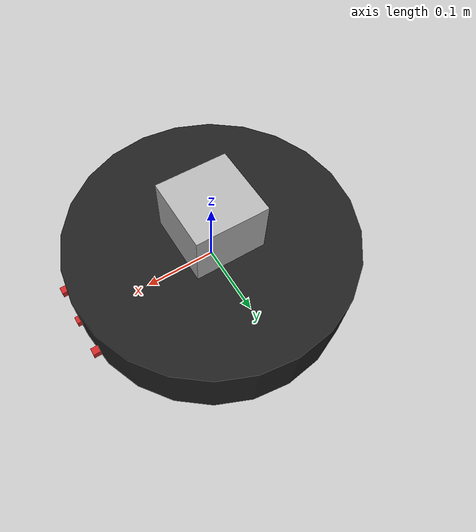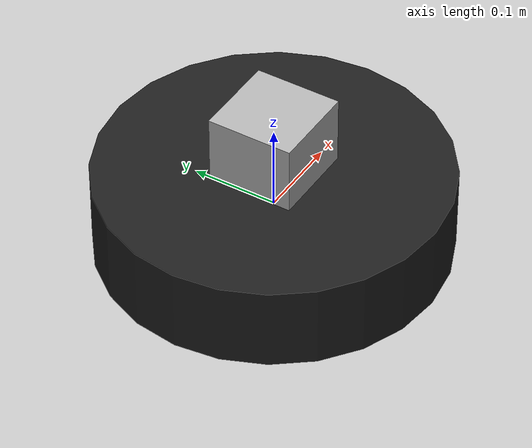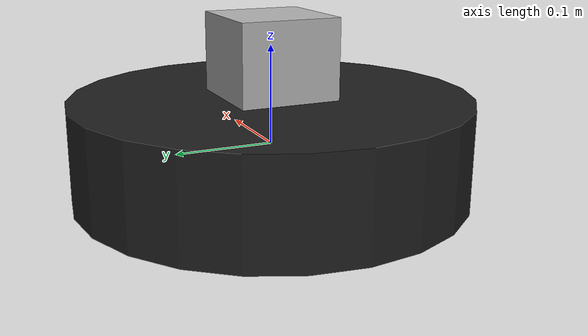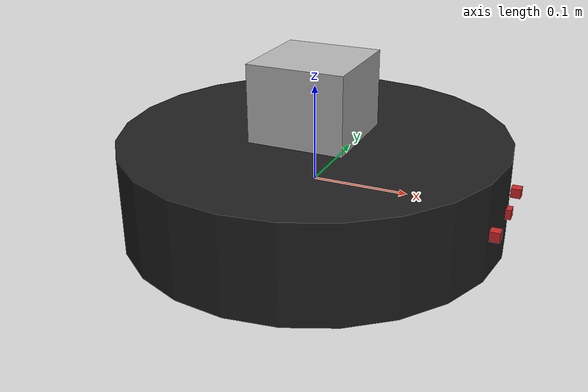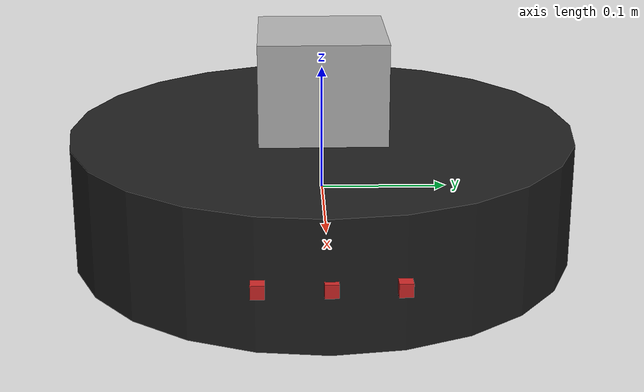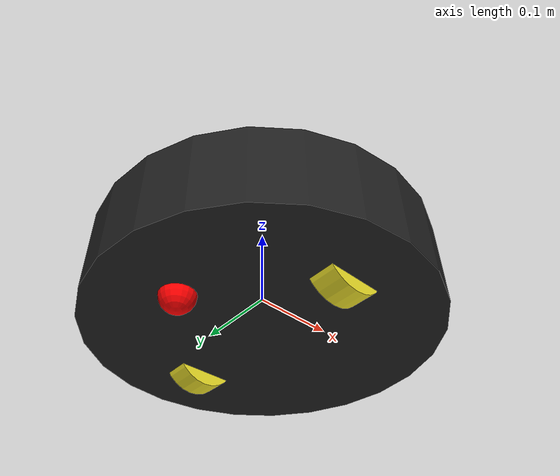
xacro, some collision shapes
<?xml version='1.0'?>

<robot name="base" xmlns:xacro="http://www.ros.org/wiki/xacro">

<xacro:property name="camera_link" value="0.01"/>
<xacro:property name="camera_mass" value="0.1"/>

<xacro:include filename="$(find dualwheelbot)/urdf/materials.xacro"/>
<xacro:include filename="$(find dualwheelbot)/urdf/bot.gazebo"/>

  <link name='chassis'>
    <pose>0 0 0 0 0 0</pose>

    <inertial>
      <mass value="2"/>
      <origin xyz="0.0 0 0.0" rpy=" 0 0 0"/>
      <inertia ixx="0.00416" ixy="0" ixz="0" iyy="0.01416" iyz="0" izz="0.0166"/>
    </inertial>

    <collision name='collision'>
      <geometry>
        <cylinder length="0.1" radius="0.4"/>
      </geometry>
    </collision>

    <visual name='chassis_visual'>
      <origin xyz="0 0 0" rpy=" 0 0 0"/>
      <geometry>
        <cylinder length="0.1" radius="0.2"/>
      </geometry>
      <material name="black"/>
    </visual>

  </link>

  <link name="custer_wheel">
    <inertial>
      <origin xyz="0.0 0.0 0.0" rpy="0.0 0.0 0.0"/>
      <mass value="0.1"/>
      <inertia ixx="0.002" ixy="0.0" ixz="0.0" iyy="0.002" iyz="0.0" izz="0.002"/>
    </inertial>

    <visual name="">
      <origin xyz="0.0 0.0 0.0" rpy="0.0 0.0 0.0"/>
      <geometry>
         <sphere radius="0.02"/>
      </geometry>

      <material name="">
        <color rgba="1.0 0.0 0.0 1.0"/>
        <texture filename=""/>
      </material>
    </visual>

    <collision>
      <origin xyz="0.0 0.0 0.0" rpy="0.0 0.0 0.0"/>
      <geometry>
         <sphere radius="0.02"/>
      </geometry>
    </collision>
  </link>

  <joint name="custer_joint" type="fixed">
    <origin xyz="-0.112 0.0 -0.05 " rpy="0.0 0.0 0.0"/>
    <parent link="chassis"/>
    <child link="custer_wheel"/>
    <axis xyz="0.0 0.0 0.0"/>
    <limit lower="0.0" upper="0.0" effort="0.0" velocity="0.0"/>
  </joint>

  <link name="left_wheel">
    <!--origin xyz="0.1 0.13 0.1" rpy="0 1.5707 1.5707"/-->
    <collision name="collision">
      <origin xyz="0 0 0" rpy="0 1.5707 1.5707"/>
      <geometry>
        <cylinder radius="0.041" length="0.03"/>
      </geometry>

    </collision>

    <visual name="left_wheel_visual">
      <origin xyz="0 0 0" rpy="0 1.5707 1.5707"/>
      <geometry>
        <cylinder radius="0.041" length="0.03"/>

      </geometry>
      <material name="yellow"/>
    </visual>

    <inertial>
      <origin xyz="0 0 0" rpy="0 1.5707 1.5707"/>
      <mass value="1"/>
      <inertia ixx="0.005" ixy="0" ixz="0" iyy="0.0025" iyz="0" izz="0.0025"/>
    </inertial>

  </link>

  <link name="right_wheel">
    <!--origin xyz="0.1 -0.13 0.1" rpy="0 1.5707 1.5707"/-->
    <collision name="collision">
      <origin xyz="0 0 0" rpy="0 1.5707 1.5707"/>
      <geometry>
        <cylinder radius="0.041" length="0.03"/>
      </geometry>
      <surface>
        <friction>
          <ode>
            <mu>200</mu>
            <mu2>200</mu2>
            <slip1>0</slip1>
            <slip2>0</slip2>
          </ode>
        </friction>
      </surface>
    </collision>
    <visual name="right_wheel_visual">
      <origin xyz="0 0 0" rpy="0 1.5707 1.5707"/>
      <geometry>
       <cylinder radius="0.041" length="0.03"/>

      </geometry>
      <material name="yellow"/>
    </visual>
    <inertial>
      <origin xyz="0 0 0" rpy="0 1.5707 1.5707"/>
      <mass value="1"/>
      <inertia ixx="0.005" ixy="0" ixz="0" iyy="0.0025" iyz="0" izz="0.0025"/>
    </inertial>
  </link>

  <joint type="continuous" name="left_wheel_hinge">
    <origin xyz="0 0.12 -0.025" rpy="0 0 0"/>
    <!--origin xyz="0.1 0.13 0" rpy="0 1.5707 1.5707"/-->
    <child link="left_wheel"/>
    <parent link="chassis"/>
    <axis xyz="0 1 0" rpy="0 0 0"/>
    <joint_properties damping="0.0" friction="0.0"/>
  </joint>

  <joint type="continuous" name="right_wheel_hinge">
    <origin xyz="0 -0.12 -0.025" rpy="0 0 0"/>
    <!--origin xyz="0.1 -0.13 0" rpy="0 1.5707 1.5707"/-->
    <child link="right_wheel"/>
    <parent link="chassis"/>
    <axis xyz="0 1 0" rpy="0 0 0"/>
    <joint_properties damping="0.0" friction="0.0"/>
  </joint>

<gazebo reference="right_wheel">
  <mu1>15</mu1>
  <mu2>15</mu2>
  <kp>1000000.0</kp>
  <kd>100.0</kd>
  <minDepth>0.001</minDepth>
  <maxVel>1.0</maxVel>
</gazebo>

<gazebo reference="left_wheel">
  <mu1>15</mu1>
  <mu2>15</mu2>
  <kp>1000000.0</kp>
  <kd>100.0</kd>
  <minDepth>0.001</minDepth>
  <maxVel>1.0</maxVel>
</gazebo>

<gazebo reference="custer_wheel">
  <mu1>0</mu1>
  <mu2>0</mu2>
  <slip1>1.0</slip1>
  <slip2>1.0</slip2>
</gazebo>

  <!-- Camera -->
  <link name="camera_link_R">
    <collision>
      <origin xyz="0 0 0" rpy="0 0 0"/>
      <geometry>
    <box size="${camera_link} ${camera_link} ${camera_link}"/>
      </geometry>
    </collision>

    <visual>
      <origin xyz="0 0 0" rpy="0 0 0"/>
      <geometry>
    <box size="${camera_link} ${camera_link} ${camera_link}"/>
      </geometry>
      <material name="red"/>
    </visual>

    <inertial>
      <mass value="${camera_mass}" />
      <origin xyz="0 0 0" rpy="0 0 0"/>
      <inertia ixx="1e-6" ixy="0" ixz="0" iyy="1e-6" iyz="0" izz="1e-6" />
    </inertial>
  </link>

  <joint name="camera_joint_R" type="fixed">
    <axis xyz="0 1 0" />
    <origin xyz="0.2 0.05 0" rpy="0 0 0"/>
    <parent link="chassis"/>
    <child link="camera_link_R"/>
  </joint>

  <!-- Camera -->
  <link name="camera_link_L">
    <collision>
      <origin xyz="0 0 0" rpy="0 0 0"/>
      <geometry>
    <box size="${camera_link} ${camera_link} ${camera_link}"/>
      </geometry>
    </collision>

    <visual>
      <origin xyz="0 0 0" rpy="0 0 0"/>
      <geometry>
    <box size="${camera_link} ${camera_link} ${camera_link}"/>
      </geometry>
      <material name="red"/>
    </visual>

    <inertial>
      <mass value="${camera_mass}" />
      <origin xyz="0 0 0" rpy="0 0 0"/>
      <inertia ixx="1e-6" ixy="0" ixz="0" iyy="1e-6" iyz="0" izz="1e-6" />
    </inertial>
  </link>

  <joint name="camera_joint_L" type="fixed">
    <axis xyz="0 1 0" />
    <origin xyz="0.2 -0.05 0" rpy="0 0 0"/>
    <parent link="chassis"/>
    <child link="camera_link_L"/>
  </joint>

  <link name="stereo_camera_frame">
    <collision>
      <origin xyz="0 0 0" rpy="0 0 0"/>
      <geometry>
    <box size="${camera_link} ${camera_link} ${camera_link}"/>
      </geometry>
    </collision>

    <visual>
      <origin xyz="0 0 0" rpy="0 0 0"/>
      <geometry>
    <box size="${camera_link} ${camera_link} ${camera_link}"/>
      </geometry>
      <material name="red"/>
    </visual>

    <inertial>
      <mass value="${camera_mass}" />
      <origin xyz="0 0 0" rpy="0 0 0"/>
      <inertia ixx="1e-6" ixy="0" ixz="0" iyy="1e-6" iyz="0" izz="1e-6" />
    </inertial>
  </link>
  <joint name="stereo_camera_frame_joint" type="fixed">
    <axis xyz="0 1 0" />
    <origin xyz="0.2 0.0 0" rpy="0 0 0"/>
    <parent link="chassis"/>
    <child link="stereo_camera_frame"/>
  </joint>

  <!-- Hokuyo Laser -->
  <link name="lidar_link">
    <collision>
      <origin xyz="0 0 0" rpy="0 0 0"/>
      <geometry>
    <box size="0.1 0.1 0.1"/>
      </geometry>
    </collision>

    <visual>
      <origin xyz="0 0 0" rpy="0 0 0"/>
      <geometry>
        <mesh filename="package://dualwheelbot/meshes/hokuyo.dae"/>
      </geometry>
    </visual>

    <inertial>
      <mass value="1e-5" />
      <origin xyz="0 0 0" rpy="0 0 0"/>
      <inertia ixx="1e-6" ixy="0" ixz="0" iyy="1e-6" iyz="0" izz="1e-6" />
    </inertial>
  </link>

  <joint name="lidar_joint" type="fixed">
    <axis xyz="0 1 0" />
    <origin xyz="0.0 0 0.08" rpy="0 0 0"/>
    <parent link="chassis"/>
    <child link="lidar_link"/>
  </joint>

  <link name="imu_link">
    <collision>
        <origin xyz="0 0 0" rpy="0 0 0"/>
        <geometry>
          <box size="0.01 0.01 0.01"/>
        </geometry>
    </collision>

    <visual>
      <origin xyz="0 0 0" rpy="0 0 0"/>
        <geometry>
          <box size=".01 .01 .01"/>
        </geometry>
      <material name="black"/>
    </visual>

  </link>

  <joint name="imu_joint" type="fixed">
    <axis xyz="0 1 0" />
    <origin xyz="0 0 0.01" rpy="0 0 0"/>
    <parent link="chassis"/>
    <child link="imu_link"/>
  </joint>

</robot>
